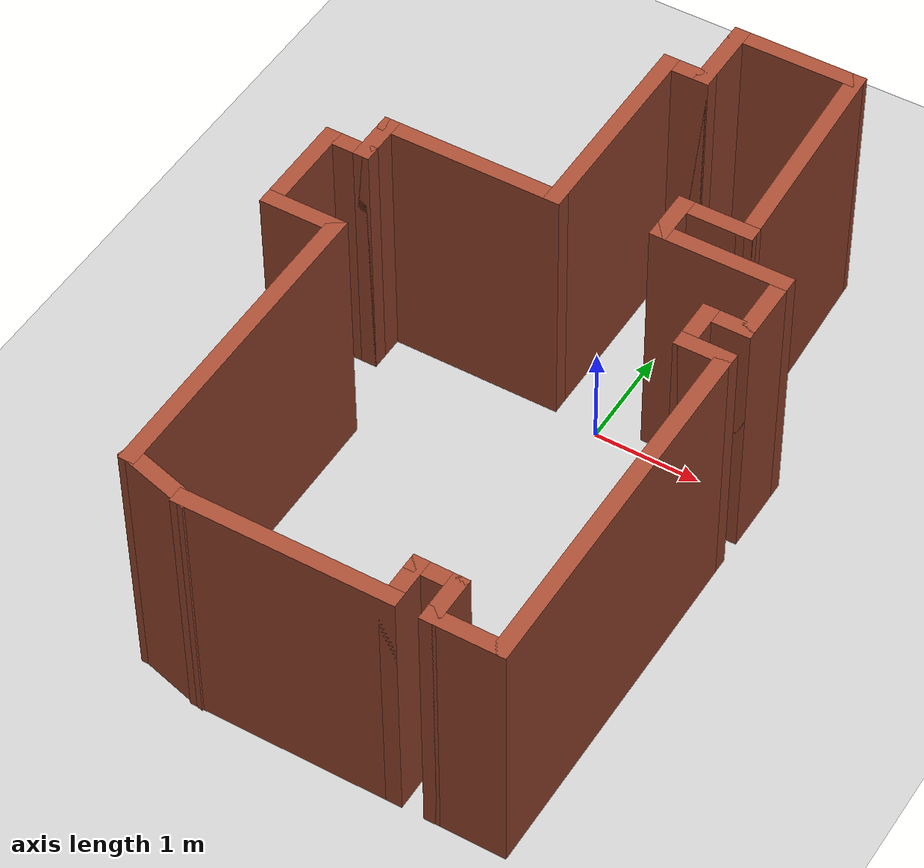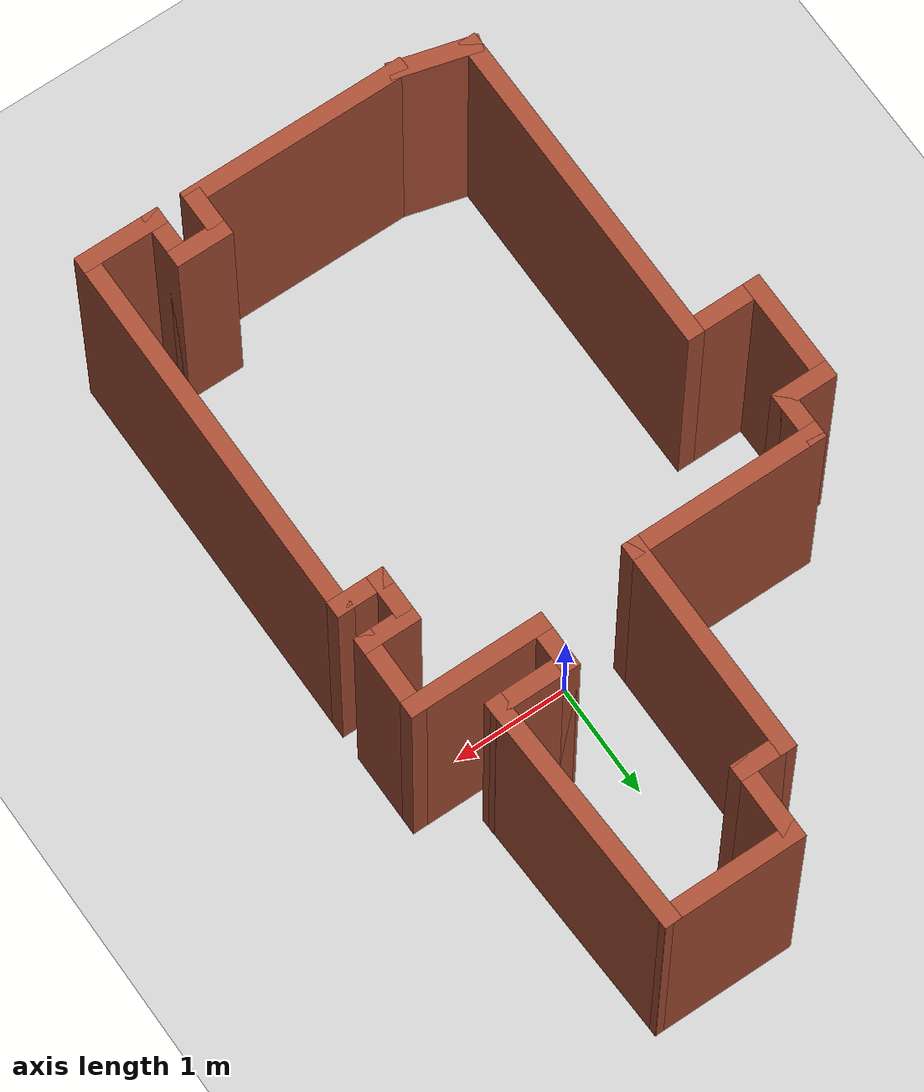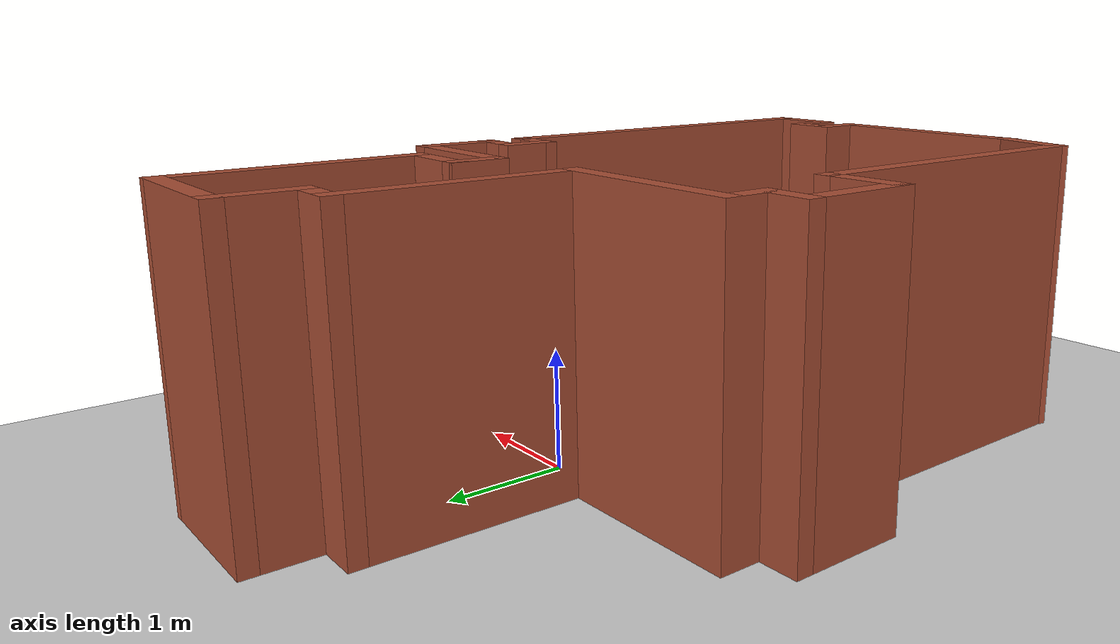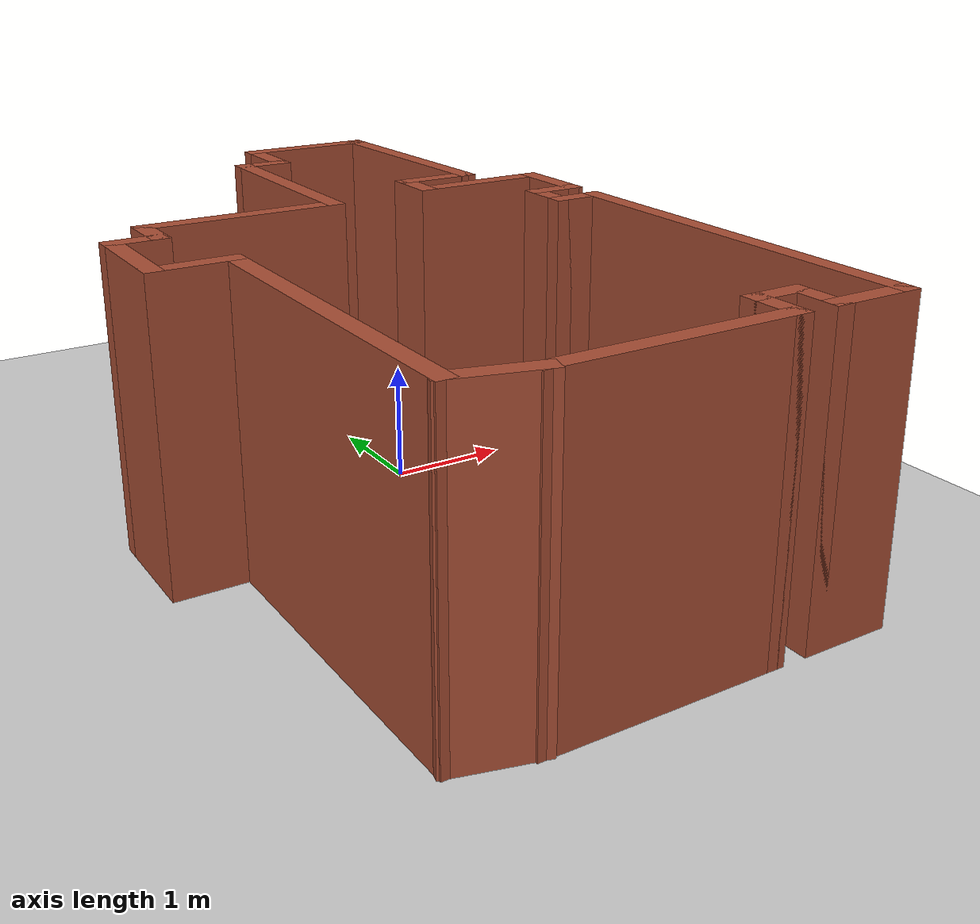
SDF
<sdf version="1.6">
 <world name="default">
  <light name="sun" type="directional">
   <pose>0 0 10 0 -0 0</pose>
   <diffuse>0.8 0.8 0.8 1</diffuse>
   <specular>0.2 0.2 0.2 1</specular>
   <attenuation>
    <range>1000</range>
    <constant>0.9</constant>
    <linear>0.01</linear>
    <quadratic>0.001</quadratic>
   </attenuation>
   <direction>-0.5 0.1 -0.9</direction>
  </light>
  <model name="ground_plane">
   <static>1</static>
   <link name="link">
    <collision name="collision">
     <geometry><plane><normal>0 0 1</normal><size>100 100</size></plane></geometry>
     <surface>
      <contact><collide_bitmask>65535</collide_bitmask></contact>
      <friction><ode><mu>100</mu><mu2>50</mu2></ode></friction>
     </surface>
    </collision>
    <visual name="visual">
     <cast_shadows>0</cast_shadows>
     <geometry><plane><normal>0 0 1</normal><size>100 100</size></plane></geometry>
     <material>
      <script><uri>file://media/materials/scripts/gazebo.material</uri><name>Gazebo/Grey</name></script>
     </material>
    </visual>
   </link>
  </model>
  <gravity>0 0 -9.8</gravity>
  <magnetic_field>6e-06 2.3e-05 -4.2e-05</magnetic_field>
  <atmosphere type="adiabatic"/>
  <physics name="default_physics" default="0" type="ode">
   <max_step_size>0.001</max_step_size>
   <real_time_factor>1</real_time_factor>
   <real_time_update_rate>1000</real_time_update_rate>
  </physics>
  <scene><ambient>0.4 0.4 0.4 1</ambient><background>0.7 0.7 0.7 1</background><shadows>1</shadows></scene>
  <audio><device>default</device></audio>
  <spherical_coordinates>
   <surface_model>EARTH_WGS84</surface_model>
   <latitude_deg>0</latitude_deg>
   <longitude_deg>0</longitude_deg>
   <elevation>0</elevation>
   <heading_deg>0</heading_deg>
  </spherical_coordinates>
  <model name="map_44">
   <pose>-0.456862 -0.750786 0 0 -0 0</pose>
   <link name="Wall_0">
    <collision name="Wall_0_Collision">
     <geometry><box><size>1.25 0.15 2.5</size></box></geometry>
     <pose>0 0 1.25 0 -0 0</pose>
    </collision>
    <visual name="Wall_0_Visual">
     <pose>0 0 1.25 0 -0 0</pose>
     <geometry><box><size>1.25 0.15 2.5</size></box></geometry>
     <material>
      <script><uri>file://media/materials/scripts/gazebo.material</uri><name>Gazebo/Bricks</name></script>
      <ambient>1 1 1 1</ambient>
     </material>
     <meta><layer>0</layer></meta>
    </visual>
    <pose>0.860222 3.33462 0 0 -0 3.14159</pose>
   </link>
   <link name="Wall_1">
    <collision name="Wall_1_Collision">
     <geometry><box><size>0.75 0.15 2.5</size></box></geometry>
     <pose>0 0 1.25 0 -0 0</pose>
    </collision>
    <visual name="Wall_1_Visual">
     <pose>0 0 1.25 0 -0 0</pose>
     <geometry><box><size>0.75 0.15 2.5</size></box></geometry>
     <material>
      <script><uri>file://media/materials/scripts/gazebo.material</uri><name>Gazebo/Bricks</name></script>
      <ambient>1 1 1 1</ambient>
     </material>
     <meta><layer>0</layer></meta>
    </visual>
    <pose>0.310222 3.03462 0 0 -0 -1.5708</pose>
   </link>
   <link name="Wall_13">
    <collision name="Wall_13_Collision">
     <geometry><box><size>2 0.15 2.5</size></box></geometry>
     <pose>0 0 1.25 0 -0 0</pose>
    </collision>
    <visual name="Wall_13_Visual">
     <pose>0 0 1.25 0 -0 0</pose>
     <geometry><box><size>2 0.15 2.5</size></box></geometry>
     <material>
      <script><uri>file://media/materials/scripts/gazebo.material</uri><name>Gazebo/Bricks</name></script>
      <ambient>1 1 1 1</ambient>
     </material>
     <meta><layer>0</layer></meta>
    </visual>
    <pose>-0.039778 1.80962 0 0 -0 -1.5708</pose>
   </link>
   <link name="Wall_14">
    <collision name="Wall_14_Collision">
     <geometry><box><size>1.75 0.15 2.5</size></box></geometry>
     <pose>0 0 1.25 0 -0 0</pose>
    </collision>
    <visual name="Wall_14_Visual">
     <pose>0 0 1.25 0 -0 0</pose>
     <geometry><box><size>1.75 0.15 2.5</size></box></geometry>
     <material>
      <script><uri>file://media/materials/scripts/gazebo.material</uri><name>Gazebo/Bricks</name></script>
      <ambient>1 1 1 1</ambient>
     </material>
     <meta><layer>0</layer></meta>
    </visual>
    <pose>-0.839778 0.884616 0 0 -0 3.14159</pose>
   </link>
   <link name="Wall_15">
    <collision name="Wall_15_Collision">
     <geometry><box><size>0.5 0.15 2.5</size></box></geometry>
     <pose>0 0 1.25 0 -0 0</pose>
    </collision>
    <visual name="Wall_15_Visual">
     <pose>0 0 1.25 0 -0 0</pose>
     <geometry><box><size>0.5 0.15 2.5</size></box></geometry>
     <material>
      <script><uri>file://media/materials/scripts/gazebo.material</uri><name>Gazebo/Bricks</name></script>
      <ambient>1 1 1 1</ambient>
     </material>
     <meta><layer>0</layer></meta>
    </visual>
    <pose>-1.63978 0.709617 0 0 -0 -1.5708</pose>
   </link>
   <link name="Wall_18">
    <collision name="Wall_18_Collision">
     <geometry><box><size>0.5 0.15 2.5</size></box></geometry>
     <pose>0 0 1.25 0 -0 0</pose>
    </collision>
    <visual name="Wall_18_Visual">
     <pose>0 0 1.25 0 -0 0</pose>
     <geometry><box><size>0.5 0.15 2.5</size></box></geometry>
     <material>
      <script><uri>file://media/materials/scripts/gazebo.material</uri><name>Gazebo/Bricks</name></script>
      <ambient>1 1 1 1</ambient>
     </material>
     <meta><layer>0</layer></meta>
    </visual>
    <pose>-1.81478 0.534617 0 0 -0 3.14159</pose>
   </link>
   <link name="Wall_19">
    <collision name="Wall_19_Collision">
     <geometry><box><size>1 0.15 2.5</size></box></geometry>
     <pose>0 0 1.25 0 -0 0</pose>
    </collision>
    <visual name="Wall_19_Visual">
     <pose>0 0 1.25 0 -0 0</pose>
     <geometry><box><size>1 0.15 2.5</size></box></geometry>
     <material>
      <script><uri>file://media/materials/scripts/gazebo.material</uri><name>Gazebo/Bricks</name></script>
      <ambient>1 1 1 1</ambient>
     </material>
     <meta><layer>0</layer></meta>
    </visual>
    <pose>-1.98978 0.109617 0 0 -0 -1.5708</pose>
   </link>
   <link name="Wall_2">
    <collision name="Wall_2_Collision">
     <geometry><box><size>0.5 0.15 2.5</size></box></geometry>
     <pose>0 0 1.25 0 -0 0</pose>
    </collision>
    <visual name="Wall_2_Visual">
     <pose>0 0 1.25 0 -0 0</pose>
     <geometry><box><size>0.5 0.15 2.5</size></box></geometry>
     <material>
      <script><uri>file://media/materials/scripts/gazebo.material</uri><name>Gazebo/Bricks</name></script>
      <ambient>1 1 1 1</ambient>
     </material>
     <meta><layer>0</layer></meta>
    </visual>
    <pose>0.135222 2.73462 0 0 -0 3.14159</pose>
   </link>
   <link name="Wall_20">
    <collision name="Wall_20_Collision">
     <geometry><box><size>0.75 0.15 2.5</size></box></geometry>
     <pose>0 0 1.25 0 -0 0</pose>
    </collision>
    <visual name="Wall_20_Visual">
     <pose>0 0 1.25 0 -0 0</pose>
     <geometry><box><size>0.75 0.15 2.5</size></box></geometry>
     <material>
      <script><uri>file://media/materials/scripts/gazebo.material</uri><name>Gazebo/Bricks</name></script>
      <ambient>1 1 1 1</ambient>
     </material>
     <meta><layer>0</layer></meta>
    </visual>
    <pose>-1.68978 -0.315384 0 0 -0 0</pose>
   </link>
   <link name="Wall_21">
    <collision name="Wall_21_Collision">
     <geometry><box><size>3 0.15 2.5</size></box></geometry>
     <pose>0 0 1.25 0 -0 0</pose>
    </collision>
    <visual name="Wall_21_Visual">
     <pose>0 0 1.25 0 -0 0</pose>
     <geometry><box><size>3 0.15 2.5</size></box></geometry>
     <material>
      <script><uri>file://media/materials/scripts/gazebo.material</uri><name>Gazebo/Bricks</name></script>
      <ambient>1 1 1 1</ambient>
     </material>
     <meta><layer>0</layer></meta>
    </visual>
    <pose>-1.38978 -1.74038 0 0 -0 -1.5708</pose>
   </link>
   <link name="Wall_22">
    <collision name="Wall_22_Collision">
     <geometry><box><size>0.75 0.15 2.5</size></box></geometry>
     <pose>0 0 1.25 0 -0 0</pose>
    </collision>
    <visual name="Wall_22_Visual">
     <pose>0 0 1.25 0 -0 0</pose>
     <geometry><box><size>0.75 0.15 2.5</size></box></geometry>
     <material>
      <script><uri>file://media/materials/scripts/gazebo.material</uri><name>Gazebo/Bricks</name></script>
      <ambient>1 1 1 1</ambient>
     </material>
     <meta><layer>0</layer></meta>
    </visual>
    <pose>-1.1 -3.24303 0 0 -0 -0.261799</pose>
   </link>
   <link name="Wall_23">
    <collision name="Wall_23_Collision">
     <geometry><box><size>2 0.15 2.5</size></box></geometry>
     <pose>0 0 1.25 0 -0 0</pose>
    </collision>
    <visual name="Wall_23_Visual">
     <pose>0 0 1.25 0 -0 0</pose>
     <geometry><box><size>2 0.15 2.5</size></box></geometry>
     <material>
      <script><uri>file://media/materials/scripts/gazebo.material</uri><name>Gazebo/Bricks</name></script>
      <ambient>1 1 1 1</ambient>
     </material>
     <meta><layer>0</layer></meta>
    </visual>
    <pose>0.114778 -3.32068 0 0 -0 0</pose>
   </link>
   <link name="Wall_26">
    <collision name="Wall_26_Collision">
     <geometry><box><size>0.5 0.15 2.5</size></box></geometry>
     <pose>0 0 1.25 0 -0 0</pose>
    </collision>
    <visual name="Wall_26_Visual">
     <pose>0 0 1.25 0 -0 0</pose>
     <geometry><box><size>0.5 0.15 2.5</size></box></geometry>
     <material>
      <script><uri>file://media/materials/scripts/gazebo.material</uri><name>Gazebo/Bricks</name></script>
      <ambient>1 1 1 1</ambient>
     </material>
     <meta><layer>0</layer></meta>
    </visual>
    <pose>1.03978 -3.14568 0 0 -0 1.5708</pose>
   </link>
   <link name="Wall_27">
    <collision name="Wall_27_Collision">
     <geometry><box><size>0.5 0.15 2.5</size></box></geometry>
     <pose>0 0 1.25 0 -0 0</pose>
    </collision>
    <visual name="Wall_27_Visual">
     <pose>0 0 1.25 0 -0 0</pose>
     <geometry><box><size>0.5 0.15 2.5</size></box></geometry>
     <material>
      <script><uri>file://media/materials/scripts/gazebo.material</uri><name>Gazebo/Bricks</name></script>
      <ambient>1 1 1 1</ambient>
     </material>
     <meta><layer>0</layer></meta>
    </visual>
    <pose>1.21478 -2.97067 0 0 -0 0</pose>
   </link>
   <link name="Wall_28">
    <collision name="Wall_28_Collision">
     <geometry><box><size>0.5 0.15 2.5</size></box></geometry>
     <pose>0 0 1.25 0 -0 0</pose>
    </collision>
    <visual name="Wall_28_Visual">
     <pose>0 0 1.25 0 -0 0</pose>
     <geometry><box><size>0.5 0.15 2.5</size></box></geometry>
     <material>
      <script><uri>file://media/materials/scripts/gazebo.material</uri><name>Gazebo/Bricks</name></script>
      <ambient>1 1 1 1</ambient>
     </material>
     <meta><layer>0</layer></meta>
    </visual>
    <pose>1.38978 -3.14568 0 0 -0 -1.5708</pose>
   </link>
   <link name="Wall_29">
    <collision name="Wall_29_Collision">
     <geometry><box><size>0.75 0.15 2.5</size></box></geometry>
     <pose>0 0 1.25 0 -0 0</pose>
    </collision>
    <visual name="Wall_29_Visual">
     <pose>0 0 1.25 0 -0 0</pose>
     <geometry><box><size>0.75 0.15 2.5</size></box></geometry>
     <material>
      <script><uri>file://media/materials/scripts/gazebo.material</uri><name>Gazebo/Bricks</name></script>
      <ambient>1 1 1 1</ambient>
     </material>
     <meta><layer>0</layer></meta>
    </visual>
    <pose>1.68978 -3.32068 0 0 -0 0</pose>
   </link>
   <link name="Wall_30">
    <collision name="Wall_30_Collision">
     <geometry><box><size>3.5 0.15 2.5</size></box></geometry>
     <pose>0 0 1.25 0 -0 0</pose>
    </collision>
    <visual name="Wall_30_Visual">
     <pose>0 0 1.25 0 -0 0</pose>
     <geometry><box><size>3.5 0.15 2.5</size></box></geometry>
     <material>
      <script><uri>file://media/materials/scripts/gazebo.material</uri><name>Gazebo/Bricks</name></script>
      <ambient>1 1 1 1</ambient>
     </material>
     <meta><layer>0</layer></meta>
    </visual>
    <pose>1.98978 -1.64567 0 0 -0 1.5708</pose>
   </link>
   <link name="Wall_31">
    <collision name="Wall_31_Collision">
     <geometry><box><size>0.5 0.15 2.5</size></box></geometry>
     <pose>0 0 1.25 0 -0 0</pose>
    </collision>
    <visual name="Wall_31_Visual">
     <pose>0 0 1.25 0 -0 0</pose>
     <geometry><box><size>0.5 0.15 2.5</size></box></geometry>
     <material>
      <script><uri>file://media/materials/scripts/gazebo.material</uri><name>Gazebo/Bricks</name></script>
      <ambient>1 1 1 1</ambient>
     </material>
     <meta><layer>0</layer></meta>
    </visual>
    <pose>1.81478 0.029325 0 0 -0 3.14159</pose>
   </link>
   <link name="Wall_32">
    <collision name="Wall_32_Collision">
     <geometry><box><size>0.5 0.15 2.5</size></box></geometry>
     <pose>0 0 1.25 0 -0 0</pose>
    </collision>
    <visual name="Wall_32_Visual">
     <pose>0 0 1.25 0 -0 0</pose>
     <geometry><box><size>0.5 0.15 2.5</size></box></geometry>
     <material>
      <script><uri>file://media/materials/scripts/gazebo.material</uri><name>Gazebo/Bricks</name></script>
      <ambient>1 1 1 1</ambient>
     </material>
     <meta><layer>0</layer></meta>
    </visual>
    <pose>1.63978 0.204325 0 0 -0 1.5708</pose>
   </link>
   <link name="Wall_33">
    <collision name="Wall_33_Collision">
     <geometry><box><size>0.5 0.15 2.5</size></box></geometry>
     <pose>0 0 1.25 0 -0 0</pose>
    </collision>
    <visual name="Wall_33_Visual">
     <pose>0 0 1.25 0 -0 0</pose>
     <geometry><box><size>0.5 0.15 2.5</size></box></geometry>
     <material>
      <script><uri>file://media/materials/scripts/gazebo.material</uri><name>Gazebo/Bricks</name></script>
      <ambient>1 1 1 1</ambient>
     </material>
     <meta><layer>0</layer></meta>
    </visual>
    <pose>1.81478 0.379325 0 0 -0 0</pose>
   </link>
   <link name="Wall_34">
    <collision name="Wall_34_Collision">
     <geometry><box><size>0.75 0.15 2.5</size></box></geometry>
     <pose>0 0 1.25 0 -0 0</pose>
    </collision>
    <visual name="Wall_34_Visual">
     <pose>0 0 1.25 0 -0 0</pose>
     <geometry><box><size>0.75 0.15 2.5</size></box></geometry>
     <material>
      <script><uri>file://media/materials/scripts/gazebo.material</uri><name>Gazebo/Bricks</name></script>
      <ambient>1 1 1 1</ambient>
     </material>
     <meta><layer>0</layer></meta>
    </visual>
    <pose>1.98978 0.679325 0 0 -0 1.5708</pose>
   </link>
   <link name="Wall_35">
    <collision name="Wall_35_Collision">
     <geometry><box><size>1.25 0.15 2.5</size></box></geometry>
     <pose>0 0 1.25 0 -0 0</pose>
    </collision>
    <visual name="Wall_35_Visual">
     <pose>0 0 1.25 0 -0 0</pose>
     <geometry><box><size>1.25 0.15 2.5</size></box></geometry>
     <material>
      <script><uri>file://media/materials/scripts/gazebo.material</uri><name>Gazebo/Bricks</name></script>
      <ambient>1 1 1 1</ambient>
     </material>
     <meta><layer>0</layer></meta>
    </visual>
    <pose>1.43978 0.979325 0 0 -0 3.14159</pose>
   </link>
   <link name="Wall_38">
    <collision name="Wall_38_Collision">
     <geometry><box><size>0.5 0.15 2.5</size></box></geometry>
     <pose>0 0 1.25 0 -0 0</pose>
    </collision>
    <visual name="Wall_38_Visual">
     <pose>0 0 1.25 0 -0 0</pose>
     <geometry><box><size>0.5 0.15 2.5</size></box></geometry>
     <material>
      <script><uri>file://media/materials/scripts/gazebo.material</uri><name>Gazebo/Bricks</name></script>
      <ambient>1 1 1 1</ambient>
     </material>
     <meta><layer>0</layer></meta>
    </visual>
    <pose>0.889778 1.15433 0 0 -0 1.5708</pose>
   </link>
   <link name="Wall_39">
    <collision name="Wall_39_Collision">
     <geometry><box><size>0.75 0.15 2.5</size></box></geometry>
     <pose>0 0 1.25 0 -0 0</pose>
    </collision>
    <visual name="Wall_39_Visual">
     <pose>0 0 1.25 0 -0 0</pose>
     <geometry><box><size>0.75 0.15 2.5</size></box></geometry>
     <material>
      <script><uri>file://media/materials/scripts/gazebo.material</uri><name>Gazebo/Bricks</name></script>
      <ambient>1 1 1 1</ambient>
     </material>
     <meta><layer>0</layer></meta>
    </visual>
    <pose>1.18978 1.32933 0 0 -0 0</pose>
   </link>
   <link name="Wall_40">
    <collision name="Wall_40_Collision">
     <geometry><box><size>2.15687 0.15 2.5</size></box></geometry>
     <pose>0 0 1.25 0 -0 0</pose>
    </collision>
    <visual name="Wall_40_Visual">
     <pose>0 0 1.25 0 -0 0</pose>
     <geometry><box><size>2.15687 0.15 2.5</size></box></geometry>
     <material>
      <script><uri>file://media/materials/scripts/gazebo.material</uri><name>Gazebo/Bricks</name></script>
      <ambient>1 1 1 1</ambient>
     </material>
     <meta><layer>0</layer></meta>
    </visual>
    <pose>1.45 2.33197 0 0 -0 1.61045</pose>
   </link>
   <static>1</static>
  </model>
 </world>
</sdf>
